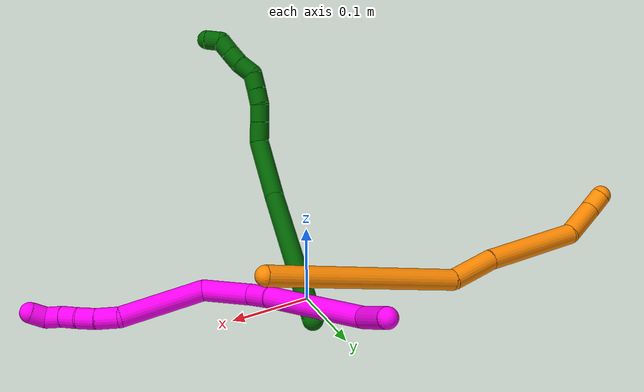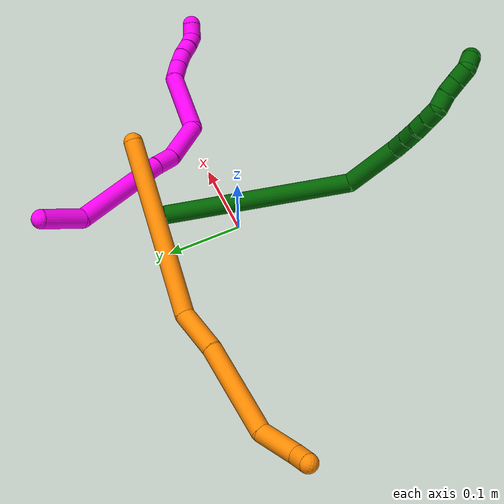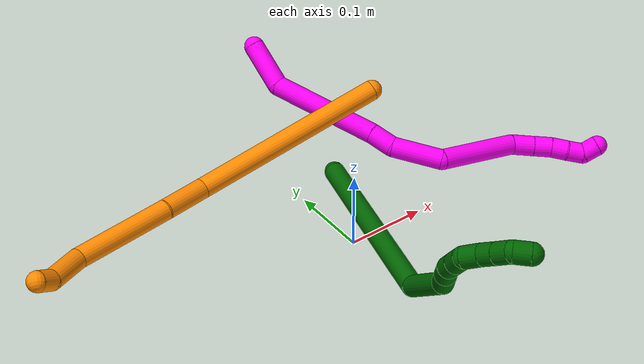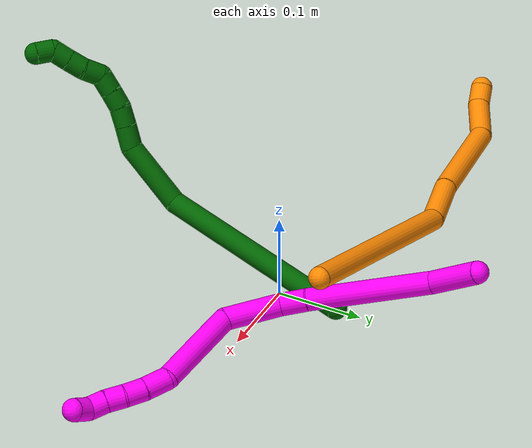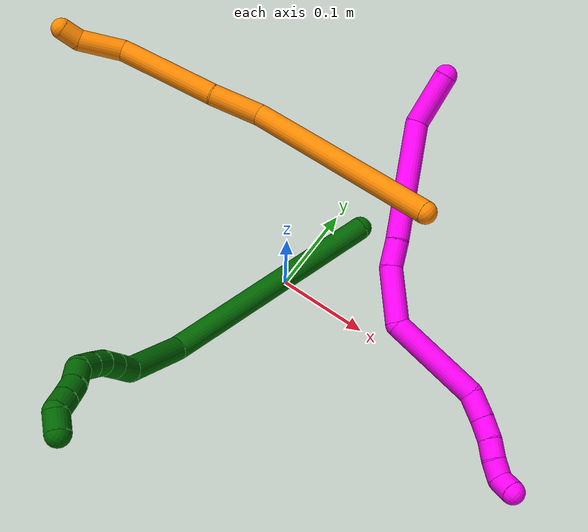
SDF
<sdf version="1.7">
 <world name="default">
  <model name="6">
   <static>0</static>
   <link name="6">
    <collision name="collision-cylinder-e_1_1_4">
     <pose>0.000333 -0.068164 0.103905 0.5806 0.002682 0.000801</pose>
     <geometry><cylinder><radius>0.0125</radius><length>0.248537</length></cylinder></geometry>
     <surface>
      <friction><ode><mu>1.16</mu><mu2>1.16</mu2><slip1>0</slip1><slip2>0</slip2></ode></friction>
      <contact><ode><kp>1e+06</kp><kd>1</kd><max_vel>0</max_vel><min_depth>0.001</min_depth></ode></contact>
     </surface>
    </collision>
    <visual name="visual-cylinder-e_1_1_4">
     <pose>0.000333 -0.068164 0.103905 0.5806 0.002682 0.000801</pose>
     <geometry><cylinder><radius>0.0125</radius><length>0.248537</length></cylinder></geometry>
     <material><ambient>0 0.392157 0.003922 1</ambient></material>
    </visual>
    <collision name="collision-cylinder-e_2_4_5">
     <pose>-0.012263 -0.170265 0.223527 1.13706 -0.332858 -0.21383</pose>
     <geometry><cylinder><radius>0.0125</radius><length>0.079142</length></cylinder></geometry>
     <surface>
      <friction><ode><mu>1.16</mu><mu2>1.16</mu2><slip1>0</slip1><slip2>0</slip2></ode></friction>
      <contact><ode><kp>1e+06</kp><kd>1</kd><max_vel>0</max_vel><min_depth>0.001</min_depth></ode></contact>
     </surface>
    </collision>
    <visual name="visual-cylinder-e_2_4_5">
     <pose>-0.012263 -0.170265 0.223527 1.13706 -0.332858 -0.21383</pose>
     <geometry><cylinder><radius>0.0125</radius><length>0.079142</length></cylinder></geometry>
     <material><ambient>0 0.392157 0.003922 1</ambient></material>
    </visual>
    <collision name="collision-cylinder-e_3_5_6">
     <pose>-0.027793 -0.216992 0.239311 1.5656 -0.200549 -0.199516</pose>
     <geometry><cylinder><radius>0.0125</radius><length>0.026107</length></cylinder></geometry>
     <surface>
      <friction><ode><mu>1.16</mu><mu2>1.16</mu2><slip1>0</slip1><slip2>0</slip2></ode></friction>
      <contact><ode><kp>1e+06</kp><kd>1</kd><max_vel>0</max_vel><min_depth>0.001</min_depth></ode></contact>
     </surface>
    </collision>
    <visual name="visual-cylinder-e_3_5_6">
     <pose>-0.027793 -0.216992 0.239311 1.5656 -0.200549 -0.199516</pose>
     <geometry><cylinder><radius>0.0125</radius><length>0.026107</length></cylinder></geometry>
     <material><ambient>0 0.392157 0.003922 1</ambient></material>
    </visual>
    <collision name="collision-cylinder-e_4_6_7">
     <pose>-0.032917 -0.240758 0.23956 1.55412 -0.226 -0.222293</pose>
     <geometry><cylinder><radius>0.0125</radius><length>0.022524</length></cylinder></geometry>
     <surface>
      <friction><ode><mu>1.16</mu><mu2>1.16</mu2><slip1>0</slip1><slip2>0</slip2></ode></friction>
      <contact><ode><kp>1e+06</kp><kd>1</kd><max_vel>0</max_vel><min_depth>0.001</min_depth></ode></contact>
     </surface>
    </collision>
    <visual name="visual-cylinder-e_4_6_7">
     <pose>-0.032917 -0.240758 0.23956 1.55412 -0.226 -0.222293</pose>
     <geometry><cylinder><radius>0.0125</radius><length>0.022524</length></cylinder></geometry>
     <material><ambient>0 0.392157 0.003922 1</ambient></material>
    </visual>
    <collision name="collision-cylinder-e_5_7_8">
     <pose>-0.03908 -0.260884 0.241703 1.35981 -0.370846 -0.301022</pose>
     <geometry><cylinder><radius>0.0125</radius><length>0.020084</length></cylinder></geometry>
     <surface>
      <friction><ode><mu>1.16</mu><mu2>1.16</mu2><slip1>0</slip1><slip2>0</slip2></ode></friction>
      <contact><ode><kp>1e+06</kp><kd>1</kd><max_vel>0</max_vel><min_depth>0.001</min_depth></ode></contact>
     </surface>
    </collision>
    <visual name="visual-cylinder-e_5_7_8">
     <pose>-0.03908 -0.260884 0.241703 1.35981 -0.370846 -0.301022</pose>
     <geometry><cylinder><radius>0.0125</radius><length>0.020084</length></cylinder></geometry>
     <material><ambient>0 0.392157 0.003922 1</ambient></material>
    </visual>
    <collision name="collision-cylinder-e_6_8_9">
     <pose>-0.046897 -0.279678 0.245842 1.34854 -0.399857 -0.321117</pose>
     <geometry><cylinder><radius>0.0125</radius><length>0.021464</length></cylinder></geometry>
     <surface>
      <friction><ode><mu>1.16</mu><mu2>1.16</mu2><slip1>0</slip1><slip2>0</slip2></ode></friction>
      <contact><ode><kp>1e+06</kp><kd>1</kd><max_vel>0</max_vel><min_depth>0.001</min_depth></ode></contact>
     </surface>
    </collision>
    <visual name="visual-cylinder-e_6_8_9">
     <pose>-0.046897 -0.279678 0.245842 1.34854 -0.399857 -0.321117</pose>
     <geometry><cylinder><radius>0.0125</radius><length>0.021464</length></cylinder></geometry>
     <material><ambient>0 0.392157 0.003922 1</ambient></material>
    </visual>
    <collision name="collision-cylinder-e_7_9_10">
     <pose>-0.059509 -0.294077 0.253052 0.757334 -0.883483 -0.371962</pose>
     <geometry><cylinder><radius>0.0125</radius><length>0.021824</length></cylinder></geometry>
     <surface>
      <friction><ode><mu>1.16</mu><mu2>1.16</mu2><slip1>0</slip1><slip2>0</slip2></ode></friction>
      <contact><ode><kp>1e+06</kp><kd>1</kd><max_vel>0</max_vel><min_depth>0.001</min_depth></ode></contact>
     </surface>
    </collision>
    <visual name="visual-cylinder-e_7_9_10">
     <pose>-0.059509 -0.294077 0.253052 0.757334 -0.883483 -0.371962</pose>
     <geometry><cylinder><radius>0.0125</radius><length>0.021824</length></cylinder></geometry>
     <material><ambient>0 0.392157 0.003922 1</ambient></material>
    </visual>
    <collision name="collision-cylinder-e_8_10_11">
     <pose>-0.074208 -0.304841 0.263064 0.878605 -0.676343 -0.327569</pose>
     <geometry><cylinder><radius>0.0125</radius><length>0.020015</length></cylinder></geometry>
     <surface>
      <friction><ode><mu>1.16</mu><mu2>1.16</mu2><slip1>0</slip1><slip2>0</slip2></ode></friction>
      <contact><ode><kp>1e+06</kp><kd>1</kd><max_vel>0</max_vel><min_depth>0.001</min_depth></ode></contact>
     </surface>
    </collision>
    <visual name="visual-cylinder-e_8_10_11">
     <pose>-0.074208 -0.304841 0.263064 0.878605 -0.676343 -0.327569</pose>
     <geometry><cylinder><radius>0.0125</radius><length>0.020015</length></cylinder></geometry>
     <material><ambient>0 0.392157 0.003922 1</ambient></material>
    </visual>
    <collision name="collision-cylinder-e_9_11_12">
     <pose>-0.086639 -0.31721 0.272947 0.914171 -0.654866 -0.331048</pose>
     <geometry><cylinder><radius>0.0125</radius><length>0.020251</length></cylinder></geometry>
     <surface>
      <friction><ode><mu>1.16</mu><mu2>1.16</mu2><slip1>0</slip1><slip2>0</slip2></ode></friction>
      <contact><ode><kp>1e+06</kp><kd>1</kd><max_vel>0</max_vel><min_depth>0.001</min_depth></ode></contact>
     </surface>
    </collision>
    <visual name="visual-cylinder-e_9_11_12">
     <pose>-0.086639 -0.31721 0.272947 0.914171 -0.654866 -0.331048</pose>
     <geometry><cylinder><radius>0.0125</radius><length>0.020251</length></cylinder></geometry>
     <material><ambient>0 0.392157 0.003922 1</ambient></material>
    </visual>
    <collision name="collision-cylinder-e_10_12_2">
     <pose>-0.100695 -0.322946 0.284006 -0.101275 -0.905706 0.049311</pose>
     <geometry><cylinder><radius>0.0125</radius><length>0.020052</length></cylinder></geometry>
     <surface>
      <friction><ode><mu>1.16</mu><mu2>1.16</mu2><slip1>0</slip1><slip2>0</slip2></ode></friction>
      <contact><ode><kp>1e+06</kp><kd>1</kd><max_vel>0</max_vel><min_depth>0.001</min_depth></ode></contact>
     </surface>
    </collision>
    <visual name="visual-cylinder-e_10_12_2">
     <pose>-0.100695 -0.322946 0.284006 -0.101275 -0.905706 0.049311</pose>
     <geometry><cylinder><radius>0.0125</radius><length>0.020052</length></cylinder></geometry>
     <material><ambient>0 0.392157 0.003922 1</ambient></material>
    </visual>
    <collision name="collision-sphere-2">
     <pose>-0.108584 -0.32232 0.290161 0 -0 0</pose>
     <geometry><sphere><radius>0.0125</radius></sphere></geometry>
     <surface>
      <friction><ode><mu>1.16</mu><mu2>1.16</mu2><slip1>0</slip1><slip2>0</slip2></ode></friction>
      <contact><ode><kp>1e+06</kp><kd>1</kd><max_vel>0</max_vel><min_depth>0.001</min_depth></ode></contact>
     </surface>
    </collision>
    <visual name="visual-sphere-2">
     <pose>-0.108584 -0.32232 0.290161 0 -0 0</pose>
     <geometry><sphere><radius>0.0125</radius></sphere></geometry>
     <material><ambient>0 0.392157 0.003922 1</ambient></material>
    </visual>
    <collision name="collision-sphere-12">
     <pose>-0.092806 -0.323571 0.27785 0 -0 0</pose>
     <geometry><sphere><radius>0.0125</radius></sphere></geometry>
     <surface>
      <friction><ode><mu>1.16</mu><mu2>1.16</mu2><slip1>0</slip1><slip2>0</slip2></ode></friction>
      <contact><ode><kp>1e+06</kp><kd>1</kd><max_vel>0</max_vel><min_depth>0.001</min_depth></ode></contact>
     </surface>
    </collision>
    <visual name="visual-sphere-12">
     <pose>-0.092806 -0.323571 0.27785 0 -0 0</pose>
     <geometry><sphere><radius>0.0125</radius></sphere></geometry>
     <material><ambient>0 0.392157 0.003922 1</ambient></material>
    </visual>
    <collision name="collision-sphere-11">
     <pose>-0.080472 -0.310849 0.268045 0 -0 0</pose>
     <geometry><sphere><radius>0.0125</radius></sphere></geometry>
     <surface>
      <friction><ode><mu>1.16</mu><mu2>1.16</mu2><slip1>0</slip1><slip2>0</slip2></ode></friction>
      <contact><ode><kp>1e+06</kp><kd>1</kd><max_vel>0</max_vel><min_depth>0.001</min_depth></ode></contact>
     </surface>
    </collision>
    <visual name="visual-sphere-11">
     <pose>-0.080472 -0.310849 0.268045 0 -0 0</pose>
     <geometry><sphere><radius>0.0125</radius></sphere></geometry>
     <material><ambient>0 0.392157 0.003922 1</ambient></material>
    </visual>
    <collision name="collision-sphere-10">
     <pose>-0.067944 -0.298833 0.258083 0 -0 0</pose>
     <geometry><sphere><radius>0.0125</radius></sphere></geometry>
     <surface>
      <friction><ode><mu>1.16</mu><mu2>1.16</mu2><slip1>0</slip1><slip2>0</slip2></ode></friction>
      <contact><ode><kp>1e+06</kp><kd>1</kd><max_vel>0</max_vel><min_depth>0.001</min_depth></ode></contact>
     </surface>
    </collision>
    <visual name="visual-sphere-10">
     <pose>-0.067944 -0.298833 0.258083 0 -0 0</pose>
     <geometry><sphere><radius>0.0125</radius></sphere></geometry>
     <material><ambient>0 0.392157 0.003922 1</ambient></material>
    </visual>
    <collision name="collision-sphere-9">
     <pose>-0.051075 -0.289321 0.248021 0 -0 0</pose>
     <geometry><sphere><radius>0.0125</radius></sphere></geometry>
     <surface>
      <friction><ode><mu>1.16</mu><mu2>1.16</mu2><slip1>0</slip1><slip2>0</slip2></ode></friction>
      <contact><ode><kp>1e+06</kp><kd>1</kd><max_vel>0</max_vel><min_depth>0.001</min_depth></ode></contact>
     </surface>
    </collision>
    <visual name="visual-sphere-9">
     <pose>-0.051075 -0.289321 0.248021 0 -0 0</pose>
     <geometry><sphere><radius>0.0125</radius></sphere></geometry>
     <material><ambient>0 0.392157 0.003922 1</ambient></material>
    </visual>
    <collision name="collision-sphere-4">
     <pose>0.000666 -0.136329 0.207809 0 -0 0</pose>
     <geometry><sphere><radius>0.0125</radius></sphere></geometry>
     <surface>
      <friction><ode><mu>1.16</mu><mu2>1.16</mu2><slip1>0</slip1><slip2>0</slip2></ode></friction>
      <contact><ode><kp>1e+06</kp><kd>1</kd><max_vel>0</max_vel><min_depth>0.001</min_depth></ode></contact>
     </surface>
    </collision>
    <visual name="visual-sphere-4">
     <pose>0.000666 -0.136329 0.207809 0 -0 0</pose>
     <geometry><sphere><radius>0.0125</radius></sphere></geometry>
     <material><ambient>0 0.392157 0.003922 1</ambient></material>
    </visual>
    <collision name="collision-sphere-1">
     <geometry><sphere><radius>0.0125</radius></sphere></geometry>
     <surface>
      <friction><ode><mu>1.16</mu><mu2>1.16</mu2><slip1>0</slip1><slip2>0</slip2></ode></friction>
      <contact><ode><kp>1e+06</kp><kd>1</kd><max_vel>0</max_vel><min_depth>0.001</min_depth></ode></contact>
     </surface>
    </collision>
    <visual name="visual-sphere-1">
     <geometry><sphere><radius>0.0125</radius></sphere></geometry>
     <material><ambient>0 0.392157 0.003922 1</ambient></material>
    </visual>
    <collision name="collision-sphere-8">
     <pose>-0.042719 -0.270036 0.243663 0 -0 0</pose>
     <geometry><sphere><radius>0.0125</radius></sphere></geometry>
     <surface>
      <friction><ode><mu>1.16</mu><mu2>1.16</mu2><slip1>0</slip1><slip2>0</slip2></ode></friction>
      <contact><ode><kp>1e+06</kp><kd>1</kd><max_vel>0</max_vel><min_depth>0.001</min_depth></ode></contact>
     </surface>
    </collision>
    <visual name="visual-sphere-8">
     <pose>-0.042719 -0.270036 0.243663 0 -0 0</pose>
     <geometry><sphere><radius>0.0125</radius></sphere></geometry>
     <material><ambient>0 0.392157 0.003922 1</ambient></material>
    </visual>
    <collision name="collision-sphere-5">
     <pose>-0.025193 -0.204201 0.239244 0 -0 0</pose>
     <geometry><sphere><radius>0.0125</radius></sphere></geometry>
     <surface>
      <friction><ode><mu>1.16</mu><mu2>1.16</mu2><slip1>0</slip1><slip2>0</slip2></ode></friction>
      <contact><ode><kp>1e+06</kp><kd>1</kd><max_vel>0</max_vel><min_depth>0.001</min_depth></ode></contact>
     </surface>
    </collision>
    <visual name="visual-sphere-5">
     <pose>-0.025193 -0.204201 0.239244 0 -0 0</pose>
     <geometry><sphere><radius>0.0125</radius></sphere></geometry>
     <material><ambient>0 0.392157 0.003922 1</ambient></material>
    </visual>
    <collision name="collision-sphere-6">
     <pose>-0.030394 -0.229784 0.239377 0 -0 0</pose>
     <geometry><sphere><radius>0.0125</radius></sphere></geometry>
     <surface>
      <friction><ode><mu>1.16</mu><mu2>1.16</mu2><slip1>0</slip1><slip2>0</slip2></ode></friction>
      <contact><ode><kp>1e+06</kp><kd>1</kd><max_vel>0</max_vel><min_depth>0.001</min_depth></ode></contact>
     </surface>
    </collision>
    <visual name="visual-sphere-6">
     <pose>-0.030394 -0.229784 0.239377 0 -0 0</pose>
     <geometry><sphere><radius>0.0125</radius></sphere></geometry>
     <material><ambient>0 0.392157 0.003922 1</ambient></material>
    </visual>
    <collision name="collision-sphere-7">
     <pose>-0.035441 -0.251732 0.239743 0 -0 0</pose>
     <geometry><sphere><radius>0.0125</radius></sphere></geometry>
     <surface>
      <friction><ode><mu>1.16</mu><mu2>1.16</mu2><slip1>0</slip1><slip2>0</slip2></ode></friction>
      <contact><ode><kp>1e+06</kp><kd>1</kd><max_vel>0</max_vel><min_depth>0.001</min_depth></ode></contact>
     </surface>
    </collision>
    <visual name="visual-sphere-7">
     <pose>-0.035441 -0.251732 0.239743 0 -0 0</pose>
     <geometry><sphere><radius>0.0125</radius></sphere></geometry>
     <material><ambient>0 0.392157 0.003922 1</ambient></material>
    </visual>
    <inertial>
     <pose>-0.021408 -0.156331 0.174599 0 -0 0</pose>
     <mass>0.5</mass>
     <inertia>
      <ixx>0.001322</ixx>
      <ixy>0</ixy>
      <ixz>0</ixz>
      <iyy>0.001069</iyy>
      <iyz>0</iyz>
      <izz>0.000795</izz>
     </inertia>
    </inertial>
   </link>
   <pose>0.037782 0.088373 0.034726 -2.05185 0.385309 2.89774</pose>
  </model>
  <model name="10">
   <static>0</static>
   <link name="10">
    <collision name="collision-cylinder-e_1_1_4">
     <pose>-0.002709 -0.006035 0.028867 0.206107 -0.091599 -0.00948</pose>
     <geometry><cylinder><radius>0.0125</radius><length>0.059231</length></cylinder></geometry>
     <surface>
      <friction><ode><mu>1.16</mu><mu2>1.16</mu2><slip1>0</slip1><slip2>0</slip2></ode></friction>
      <contact><ode><kp>1e+06</kp><kd>1</kd><max_vel>0</max_vel><min_depth>0.001</min_depth></ode></contact>
     </surface>
    </collision>
    <visual name="visual-cylinder-e_1_1_4">
     <pose>-0.002709 -0.006035 0.028867 0.206107 -0.091599 -0.00948</pose>
     <geometry><cylinder><radius>0.0125</radius><length>0.059231</length></cylinder></geometry>
     <material><ambient>1 0 0.964706 1</ambient></material>
    </visual>
    <collision name="collision-cylinder-e_2_4_5">
     <pose>0.016136 -0.0452 0.112611 0.543141 0.324365 0.091057</pose>
     <geometry><cylinder><radius>0.0125</radius><length>0.135256</length></cylinder></geometry>
     <surface>
      <friction><ode><mu>1.16</mu><mu2>1.16</mu2><slip1>0</slip1><slip2>0</slip2></ode></friction>
      <contact><ode><kp>1e+06</kp><kd>1</kd><max_vel>0</max_vel><min_depth>0.001</min_depth></ode></contact>
     </surface>
    </collision>
    <visual name="visual-cylinder-e_2_4_5">
     <pose>0.016136 -0.0452 0.112611 0.543141 0.324365 0.091057</pose>
     <geometry><cylinder><radius>0.0125</radius><length>0.135256</length></cylinder></geometry>
     <material><ambient>1 0 0.964706 1</ambient></material>
    </visual>
    <collision name="collision-cylinder-e_3_5_6">
     <pose>0.040949 -0.085212 0.180232 0.495155 0.221366 0.056168</pose>
     <geometry><cylinder><radius>0.0125</radius><length>0.029691</length></cylinder></geometry>
     <surface>
      <friction><ode><mu>1.16</mu><mu2>1.16</mu2><slip1>0</slip1><slip2>0</slip2></ode></friction>
      <contact><ode><kp>1e+06</kp><kd>1</kd><max_vel>0</max_vel><min_depth>0.001</min_depth></ode></contact>
     </surface>
    </collision>
    <visual name="visual-cylinder-e_3_5_6">
     <pose>0.040949 -0.085212 0.180232 0.495155 0.221366 0.056168</pose>
     <geometry><cylinder><radius>0.0125</radius><length>0.029691</length></cylinder></geometry>
     <material><ambient>1 0 0.964706 1</ambient></material>
    </visual>
    <collision name="collision-cylinder-e_4_6_7">
     <pose>0.056043 -0.113278 0.212623 0.823031 0.388761 0.171417</pose>
     <geometry><cylinder><radius>0.0125</radius><length>0.062444</length></cylinder></geometry>
     <surface>
      <friction><ode><mu>1.16</mu><mu2>1.16</mu2><slip1>0</slip1><slip2>0</slip2></ode></friction>
      <contact><ode><kp>1e+06</kp><kd>1</kd><max_vel>0</max_vel><min_depth>0.001</min_depth></ode></contact>
     </surface>
    </collision>
    <visual name="visual-cylinder-e_4_6_7">
     <pose>0.056043 -0.113278 0.212623 0.823031 0.388761 0.171417</pose>
     <geometry><cylinder><radius>0.0125</radius><length>0.062444</length></cylinder></geometry>
     <material><ambient>1 0 0.964706 1</ambient></material>
    </visual>
    <collision name="collision-cylinder-e_5_7_8">
     <pose>0.079617 -0.184228 0.232507 1.56603 0.231666 0.230574</pose>
     <geometry><cylinder><radius>0.0125</radius><length>0.102266</length></cylinder></geometry>
     <surface>
      <friction><ode><mu>1.16</mu><mu2>1.16</mu2><slip1>0</slip1><slip2>0</slip2></ode></friction>
      <contact><ode><kp>1e+06</kp><kd>1</kd><max_vel>0</max_vel><min_depth>0.001</min_depth></ode></contact>
     </surface>
    </collision>
    <visual name="visual-cylinder-e_5_7_8">
     <pose>0.079617 -0.184228 0.232507 1.56603 0.231666 0.230574</pose>
     <geometry><cylinder><radius>0.0125</radius><length>0.102266</length></cylinder></geometry>
     <material><ambient>1 0 0.964706 1</ambient></material>
    </visual>
    <collision name="collision-cylinder-e_6_8_9">
     <pose>0.096293 -0.245933 0.238344 1.13217 0.358147 0.229045</pose>
     <geometry><cylinder><radius>0.0125</radius><length>0.028161</length></cylinder></geometry>
     <surface>
      <friction><ode><mu>1.16</mu><mu2>1.16</mu2><slip1>0</slip1><slip2>0</slip2></ode></friction>
      <contact><ode><kp>1e+06</kp><kd>1</kd><max_vel>0</max_vel><min_depth>0.001</min_depth></ode></contact>
     </surface>
    </collision>
    <visual name="visual-cylinder-e_6_8_9">
     <pose>0.096293 -0.245933 0.238344 1.13217 0.358147 0.229045</pose>
     <geometry><cylinder><radius>0.0125</radius><length>0.028161</length></cylinder></geometry>
     <material><ambient>1 0 0.964706 1</ambient></material>
    </visual>
    <collision name="collision-cylinder-e_7_9_10">
     <pose>0.106124 -0.266663 0.248988 1.04999 0.44994 0.263564</pose>
     <geometry><cylinder><radius>0.0125</radius><length>0.022509</length></cylinder></geometry>
     <surface>
      <friction><ode><mu>1.16</mu><mu2>1.16</mu2><slip1>0</slip1><slip2>0</slip2></ode></friction>
      <contact><ode><kp>1e+06</kp><kd>1</kd><max_vel>0</max_vel><min_depth>0.001</min_depth></ode></contact>
     </surface>
    </collision>
    <visual name="visual-cylinder-e_7_9_10">
     <pose>0.106124 -0.266663 0.248988 1.04999 0.44994 0.263564</pose>
     <geometry><cylinder><radius>0.0125</radius><length>0.022509</length></cylinder></geometry>
     <material><ambient>1 0 0.964706 1</ambient></material>
    </visual>
    <collision name="collision-cylinder-e_8_10_11">
     <pose>0.114962 -0.282606 0.259905 0.883182 0.402827 0.192448</pose>
     <geometry><cylinder><radius>0.0125</radius><length>0.020122</length></cylinder></geometry>
     <surface>
      <friction><ode><mu>1.16</mu><mu2>1.16</mu2><slip1>0</slip1><slip2>0</slip2></ode></friction>
      <contact><ode><kp>1e+06</kp><kd>1</kd><max_vel>0</max_vel><min_depth>0.001</min_depth></ode></contact>
     </surface>
    </collision>
    <visual name="visual-cylinder-e_8_10_11">
     <pose>0.114962 -0.282606 0.259905 0.883182 0.402827 0.192448</pose>
     <geometry><cylinder><radius>0.0125</radius><length>0.020122</length></cylinder></geometry>
     <material><ambient>1 0 0.964706 1</ambient></material>
    </visual>
    <collision name="collision-cylinder-e_9_11_12">
     <pose>0.122086 -0.297912 0.27082 1.01714 0.320303 0.179622</pose>
     <geometry><cylinder><radius>0.0125</radius><length>0.0202</length></cylinder></geometry>
     <surface>
      <friction><ode><mu>1.16</mu><mu2>1.16</mu2><slip1>0</slip1><slip2>0</slip2></ode></friction>
      <contact><ode><kp>1e+06</kp><kd>1</kd><max_vel>0</max_vel><min_depth>0.001</min_depth></ode></contact>
     </surface>
    </collision>
    <visual name="visual-cylinder-e_9_11_12">
     <pose>0.122086 -0.297912 0.27082 1.01714 0.320303 0.179622</pose>
     <geometry><cylinder><radius>0.0125</radius><length>0.0202</length></cylinder></geometry>
     <material><ambient>1 0 0.964706 1</ambient></material>
    </visual>
    <collision name="collision-cylinder-e_10_12_2">
     <pose>0.132873 -0.31265 0.275798 1.58018 0.857317 0.864433</pose>
     <geometry><cylinder><radius>0.0125</radius><length>0.020119</length></cylinder></geometry>
     <surface>
      <friction><ode><mu>1.16</mu><mu2>1.16</mu2><slip1>0</slip1><slip2>0</slip2></ode></friction>
      <contact><ode><kp>1e+06</kp><kd>1</kd><max_vel>0</max_vel><min_depth>0.001</min_depth></ode></contact>
     </surface>
    </collision>
    <visual name="visual-cylinder-e_10_12_2">
     <pose>0.132873 -0.31265 0.275798 1.58018 0.857317 0.864433</pose>
     <geometry><cylinder><radius>0.0125</radius><length>0.020119</length></cylinder></geometry>
     <material><ambient>1 0 0.964706 1</ambient></material>
    </visual>
    <collision name="collision-sphere-2">
     <pose>0.140479 -0.319234 0.275737 0 -0 0</pose>
     <geometry><sphere><radius>0.0125</radius></sphere></geometry>
     <surface>
      <friction><ode><mu>1.16</mu><mu2>1.16</mu2><slip1>0</slip1><slip2>0</slip2></ode></friction>
      <contact><ode><kp>1e+06</kp><kd>1</kd><max_vel>0</max_vel><min_depth>0.001</min_depth></ode></contact>
     </surface>
    </collision>
    <visual name="visual-sphere-2">
     <pose>0.140479 -0.319234 0.275737 0 -0 0</pose>
     <geometry><sphere><radius>0.0125</radius></sphere></geometry>
     <material><ambient>1 0 0.964706 1</ambient></material>
    </visual>
    <collision name="collision-sphere-12">
     <pose>0.125267 -0.306067 0.27586 0 -0 0</pose>
     <geometry><sphere><radius>0.0125</radius></sphere></geometry>
     <surface>
      <friction><ode><mu>1.16</mu><mu2>1.16</mu2><slip1>0</slip1><slip2>0</slip2></ode></friction>
      <contact><ode><kp>1e+06</kp><kd>1</kd><max_vel>0</max_vel><min_depth>0.001</min_depth></ode></contact>
     </surface>
    </collision>
    <visual name="visual-sphere-12">
     <pose>0.125267 -0.306067 0.27586 0 -0 0</pose>
     <geometry><sphere><radius>0.0125</radius></sphere></geometry>
     <material><ambient>1 0 0.964706 1</ambient></material>
    </visual>
    <collision name="collision-sphere-11">
     <pose>0.118906 -0.289758 0.265779 0 -0 0</pose>
     <geometry><sphere><radius>0.0125</radius></sphere></geometry>
     <surface>
      <friction><ode><mu>1.16</mu><mu2>1.16</mu2><slip1>0</slip1><slip2>0</slip2></ode></friction>
      <contact><ode><kp>1e+06</kp><kd>1</kd><max_vel>0</max_vel><min_depth>0.001</min_depth></ode></contact>
     </surface>
    </collision>
    <visual name="visual-sphere-11">
     <pose>0.118906 -0.289758 0.265779 0 -0 0</pose>
     <geometry><sphere><radius>0.0125</radius></sphere></geometry>
     <material><ambient>1 0 0.964706 1</ambient></material>
    </visual>
    <collision name="collision-sphere-10">
     <pose>0.111018 -0.275454 0.25403 0 -0 0</pose>
     <geometry><sphere><radius>0.0125</radius></sphere></geometry>
     <surface>
      <friction><ode><mu>1.16</mu><mu2>1.16</mu2><slip1>0</slip1><slip2>0</slip2></ode></friction>
      <contact><ode><kp>1e+06</kp><kd>1</kd><max_vel>0</max_vel><min_depth>0.001</min_depth></ode></contact>
     </surface>
    </collision>
    <visual name="visual-sphere-10">
     <pose>0.111018 -0.275454 0.25403 0 -0 0</pose>
     <geometry><sphere><radius>0.0125</radius></sphere></geometry>
     <material><ambient>1 0 0.964706 1</ambient></material>
    </visual>
    <collision name="collision-sphere-9">
     <pose>0.101229 -0.257872 0.243945 0 -0 0</pose>
     <geometry><sphere><radius>0.0125</radius></sphere></geometry>
     <surface>
      <friction><ode><mu>1.16</mu><mu2>1.16</mu2><slip1>0</slip1><slip2>0</slip2></ode></friction>
      <contact><ode><kp>1e+06</kp><kd>1</kd><max_vel>0</max_vel><min_depth>0.001</min_depth></ode></contact>
     </surface>
    </collision>
    <visual name="visual-sphere-9">
     <pose>0.101229 -0.257872 0.243945 0 -0 0</pose>
     <geometry><sphere><radius>0.0125</radius></sphere></geometry>
     <material><ambient>1 0 0.964706 1</ambient></material>
    </visual>
    <collision name="collision-sphere-4">
     <pose>-0.005418 -0.012071 0.057735 0 -0 0</pose>
     <geometry><sphere><radius>0.0125</radius></sphere></geometry>
     <surface>
      <friction><ode><mu>1.16</mu><mu2>1.16</mu2><slip1>0</slip1><slip2>0</slip2></ode></friction>
      <contact><ode><kp>1e+06</kp><kd>1</kd><max_vel>0</max_vel><min_depth>0.001</min_depth></ode></contact>
     </surface>
    </collision>
    <visual name="visual-sphere-4">
     <pose>-0.005418 -0.012071 0.057735 0 -0 0</pose>
     <geometry><sphere><radius>0.0125</radius></sphere></geometry>
     <material><ambient>1 0 0.964706 1</ambient></material>
    </visual>
    <collision name="collision-sphere-1">
     <geometry><sphere><radius>0.0125</radius></sphere></geometry>
     <surface>
      <friction><ode><mu>1.16</mu><mu2>1.16</mu2><slip1>0</slip1><slip2>0</slip2></ode></friction>
      <contact><ode><kp>1e+06</kp><kd>1</kd><max_vel>0</max_vel><min_depth>0.001</min_depth></ode></contact>
     </surface>
    </collision>
    <visual name="visual-sphere-1">
     <geometry><sphere><radius>0.0125</radius></sphere></geometry>
     <material><ambient>1 0 0.964706 1</ambient></material>
    </visual>
    <collision name="collision-sphere-8">
     <pose>0.091357 -0.233994 0.232744 0 -0 0</pose>
     <geometry><sphere><radius>0.0125</radius></sphere></geometry>
     <surface>
      <friction><ode><mu>1.16</mu><mu2>1.16</mu2><slip1>0</slip1><slip2>0</slip2></ode></friction>
      <contact><ode><kp>1e+06</kp><kd>1</kd><max_vel>0</max_vel><min_depth>0.001</min_depth></ode></contact>
     </surface>
    </collision>
    <visual name="visual-sphere-8">
     <pose>0.091357 -0.233994 0.232744 0 -0 0</pose>
     <geometry><sphere><radius>0.0125</radius></sphere></geometry>
     <material><ambient>1 0 0.964706 1</ambient></material>
    </visual>
    <collision name="collision-sphere-5">
     <pose>0.037689 -0.07833 0.167488 0 -0 0</pose>
     <geometry><sphere><radius>0.0125</radius></sphere></geometry>
     <surface>
      <friction><ode><mu>1.16</mu><mu2>1.16</mu2><slip1>0</slip1><slip2>0</slip2></ode></friction>
      <contact><ode><kp>1e+06</kp><kd>1</kd><max_vel>0</max_vel><min_depth>0.001</min_depth></ode></contact>
     </surface>
    </collision>
    <visual name="visual-sphere-5">
     <pose>0.037689 -0.07833 0.167488 0 -0 0</pose>
     <geometry><sphere><radius>0.0125</radius></sphere></geometry>
     <material><ambient>1 0 0.964706 1</ambient></material>
    </visual>
    <collision name="collision-sphere-6">
     <pose>0.044208 -0.092094 0.192976 0 -0 0</pose>
     <geometry><sphere><radius>0.0125</radius></sphere></geometry>
     <surface>
      <friction><ode><mu>1.16</mu><mu2>1.16</mu2><slip1>0</slip1><slip2>0</slip2></ode></friction>
      <contact><ode><kp>1e+06</kp><kd>1</kd><max_vel>0</max_vel><min_depth>0.001</min_depth></ode></contact>
     </surface>
    </collision>
    <visual name="visual-sphere-6">
     <pose>0.044208 -0.092094 0.192976 0 -0 0</pose>
     <geometry><sphere><radius>0.0125</radius></sphere></geometry>
     <material><ambient>1 0 0.964706 1</ambient></material>
    </visual>
    <collision name="collision-sphere-7">
     <pose>0.067877 -0.134462 0.232269 0 -0 0</pose>
     <geometry><sphere><radius>0.0125</radius></sphere></geometry>
     <surface>
      <friction><ode><mu>1.16</mu><mu2>1.16</mu2><slip1>0</slip1><slip2>0</slip2></ode></friction>
      <contact><ode><kp>1e+06</kp><kd>1</kd><max_vel>0</max_vel><min_depth>0.001</min_depth></ode></contact>
     </surface>
    </collision>
    <visual name="visual-sphere-7">
     <pose>0.067877 -0.134462 0.232269 0 -0 0</pose>
     <geometry><sphere><radius>0.0125</radius></sphere></geometry>
     <material><ambient>1 0 0.964706 1</ambient></material>
    </visual>
    <inertial>
     <pose>0.054865 -0.131675 0.175825 0 -0 0</pose>
     <mass>0.5</mass>
     <inertia>
      <ixx>0.000395</ixx>
      <ixy>0</ixy>
      <ixz>0</ixz>
      <iyy>0.000252</iyy>
      <iyz>0</iyz>
      <izz>0.000144</izz>
     </inertia>
    </inertial>
   </link>
   <pose>0.032982 0.249668 0.133869 2.39496 -1.03593 -0.940771</pose>
  </model>
  <model name="19">
   <static>0</static>
   <link name="19">
    <collision name="collision-cylinder-e_1_1_4">
     <pose>-0.109692 0.017943 0.04535 -0.376745 -1.15243 0.24648</pose>
     <geometry><cylinder><radius>0.0125</radius><length>0.240091</length></cylinder></geometry>
     <surface>
      <friction><ode><mu>1.16</mu><mu2>1.16</mu2><slip1>0</slip1><slip2>0</slip2></ode></friction>
      <contact><ode><kp>1e+06</kp><kd>1</kd><max_vel>0</max_vel><min_depth>0.001</min_depth></ode></contact>
     </surface>
    </collision>
    <visual name="visual-cylinder-e_1_1_4">
     <pose>-0.109692 0.017943 0.04535 -0.376745 -1.15243 0.24648</pose>
     <geometry><cylinder><radius>0.0125</radius><length>0.240091</length></cylinder></geometry>
     <material><ambient>0.996078 0.537255 0 1</ambient></material>
    </visual>
    <collision name="collision-cylinder-e_2_4_5">
     <pose>-0.240521 0.051508 0.105164 -0.823931 -0.781822 0.356349</pose>
     <geometry><cylinder><radius>0.0125</radius><length>0.060002</length></cylinder></geometry>
     <surface>
      <friction><ode><mu>1.16</mu><mu2>1.16</mu2><slip1>0</slip1><slip2>0</slip2></ode></friction>
      <contact><ode><kp>1e+06</kp><kd>1</kd><max_vel>0</max_vel><min_depth>0.001</min_depth></ode></contact>
     </surface>
    </collision>
    <visual name="visual-cylinder-e_2_4_5">
     <pose>-0.240521 0.051508 0.105164 -0.823931 -0.781822 0.356349</pose>
     <geometry><cylinder><radius>0.0125</radius><length>0.060002</length></cylinder></geometry>
     <material><ambient>0.996078 0.537255 0 1</ambient></material>
    </visual>
    <collision name="collision-cylinder-e_3_5_6">
     <pose>-0.310784 0.092324 0.147014 -0.743683 -0.922515 0.382907</pose>
     <geometry><cylinder><radius>0.0125</radius><length>0.123257</length></cylinder></geometry>
     <surface>
      <friction><ode><mu>1.16</mu><mu2>1.16</mu2><slip1>0</slip1><slip2>0</slip2></ode></friction>
      <contact><ode><kp>1e+06</kp><kd>1</kd><max_vel>0</max_vel><min_depth>0.001</min_depth></ode></contact>
     </surface>
    </collision>
    <visual name="visual-cylinder-e_3_5_6">
     <pose>-0.310784 0.092324 0.147014 -0.743683 -0.922515 0.382907</pose>
     <geometry><cylinder><radius>0.0125</radius><length>0.123257</length></cylinder></geometry>
     <material><ambient>0.996078 0.537255 0 1</ambient></material>
    </visual>
    <collision name="collision-cylinder-e_4_6_7">
     <pose>-0.37214 0.134821 0.19019 -0.831191 -0.481172 0.215695</pose>
     <geometry><cylinder><radius>0.0125</radius><length>0.05285</length></cylinder></geometry>
     <surface>
      <friction><ode><mu>1.16</mu><mu2>1.16</mu2><slip1>0</slip1><slip2>0</slip2></ode></friction>
      <contact><ode><kp>1e+06</kp><kd>1</kd><max_vel>0</max_vel><min_depth>0.001</min_depth></ode></contact>
     </surface>
    </collision>
    <visual name="visual-cylinder-e_4_6_7">
     <pose>-0.37214 0.134821 0.19019 -0.831191 -0.481172 0.215695</pose>
     <geometry><cylinder><radius>0.0125</radius><length>0.05285</length></cylinder></geometry>
     <material><ambient>0.996078 0.537255 0 1</ambient></material>
    </visual>
    <collision name="collision-cylinder-e_5_7_2">
     <pose>-0.389849 0.162288 0.208863 -1.2942 -0.478474 0.364523</pose>
     <geometry><cylinder><radius>0.0125</radius><length>0.023801</length></cylinder></geometry>
     <surface>
      <friction><ode><mu>1.16</mu><mu2>1.16</mu2><slip1>0</slip1><slip2>0</slip2></ode></friction>
      <contact><ode><kp>1e+06</kp><kd>1</kd><max_vel>0</max_vel><min_depth>0.001</min_depth></ode></contact>
     </surface>
    </collision>
    <visual name="visual-cylinder-e_5_7_2">
     <pose>-0.389849 0.162288 0.208863 -1.2942 -0.478474 0.364523</pose>
     <geometry><cylinder><radius>0.0125</radius><length>0.023801</length></cylinder></geometry>
     <material><ambient>0.996078 0.537255 0 1</ambient></material>
    </visual>
    <collision name="collision-sphere-2">
     <pose>-0.395328 0.17245 0.211747 0 -0 0</pose>
     <geometry><sphere><radius>0.0125</radius></sphere></geometry>
     <surface>
      <friction><ode><mu>1.16</mu><mu2>1.16</mu2><slip1>0</slip1><slip2>0</slip2></ode></friction>
      <contact><ode><kp>1e+06</kp><kd>1</kd><max_vel>0</max_vel><min_depth>0.001</min_depth></ode></contact>
     </surface>
    </collision>
    <visual name="visual-sphere-2">
     <pose>-0.395328 0.17245 0.211747 0 -0 0</pose>
     <geometry><sphere><radius>0.0125</radius></sphere></geometry>
     <material><ambient>0.996078 0.537255 0 1</ambient></material>
    </visual>
    <collision name="collision-sphere-7">
     <pose>-0.38437 0.152125 0.205978 0 -0 0</pose>
     <geometry><sphere><radius>0.0125</radius></sphere></geometry>
     <surface>
      <friction><ode><mu>1.16</mu><mu2>1.16</mu2><slip1>0</slip1><slip2>0</slip2></ode></friction>
      <contact><ode><kp>1e+06</kp><kd>1</kd><max_vel>0</max_vel><min_depth>0.001</min_depth></ode></contact>
     </surface>
    </collision>
    <visual name="visual-sphere-7">
     <pose>-0.38437 0.152125 0.205978 0 -0 0</pose>
     <geometry><sphere><radius>0.0125</radius></sphere></geometry>
     <material><ambient>0.996078 0.537255 0 1</ambient></material>
    </visual>
    <collision name="collision-sphere-6">
     <pose>-0.35991 0.117516 0.174402 0 -0 0</pose>
     <geometry><sphere><radius>0.0125</radius></sphere></geometry>
     <surface>
      <friction><ode><mu>1.16</mu><mu2>1.16</mu2><slip1>0</slip1><slip2>0</slip2></ode></friction>
      <contact><ode><kp>1e+06</kp><kd>1</kd><max_vel>0</max_vel><min_depth>0.001</min_depth></ode></contact>
     </surface>
    </collision>
    <visual name="visual-sphere-6">
     <pose>-0.35991 0.117516 0.174402 0 -0 0</pose>
     <geometry><sphere><radius>0.0125</radius></sphere></geometry>
     <material><ambient>0.996078 0.537255 0 1</ambient></material>
    </visual>
    <collision name="collision-sphere-5">
     <pose>-0.261659 0.067131 0.119627 0 -0 0</pose>
     <geometry><sphere><radius>0.0125</radius></sphere></geometry>
     <surface>
      <friction><ode><mu>1.16</mu><mu2>1.16</mu2><slip1>0</slip1><slip2>0</slip2></ode></friction>
      <contact><ode><kp>1e+06</kp><kd>1</kd><max_vel>0</max_vel><min_depth>0.001</min_depth></ode></contact>
     </surface>
    </collision>
    <visual name="visual-sphere-5">
     <pose>-0.261659 0.067131 0.119627 0 -0 0</pose>
     <geometry><sphere><radius>0.0125</radius></sphere></geometry>
     <material><ambient>0.996078 0.537255 0 1</ambient></material>
    </visual>
    <collision name="collision-sphere-1">
     <geometry><sphere><radius>0.0125</radius></sphere></geometry>
     <surface>
      <friction><ode><mu>1.16</mu><mu2>1.16</mu2><slip1>0</slip1><slip2>0</slip2></ode></friction>
      <contact><ode><kp>1e+06</kp><kd>1</kd><max_vel>0</max_vel><min_depth>0.001</min_depth></ode></contact>
     </surface>
    </collision>
    <visual name="visual-sphere-1">
     <geometry><sphere><radius>0.0125</radius></sphere></geometry>
     <material><ambient>0.996078 0.537255 0 1</ambient></material>
    </visual>
    <collision name="collision-sphere-4">
     <pose>-0.219383 0.035885 0.090701 0 -0 0</pose>
     <geometry><sphere><radius>0.0125</radius></sphere></geometry>
     <surface>
      <friction><ode><mu>1.16</mu><mu2>1.16</mu2><slip1>0</slip1><slip2>0</slip2></ode></friction>
      <contact><ode><kp>1e+06</kp><kd>1</kd><max_vel>0</max_vel><min_depth>0.001</min_depth></ode></contact>
     </surface>
    </collision>
    <visual name="visual-sphere-4">
     <pose>-0.219383 0.035885 0.090701 0 -0 0</pose>
     <geometry><sphere><radius>0.0125</radius></sphere></geometry>
     <material><ambient>0.996078 0.537255 0 1</ambient></material>
    </visual>
    <inertial>
     <pose>-0.216041 0.059532 0.100683 0 -0 0</pose>
     <mass>0.5</mass>
     <inertia>
      <ixx>0.000705</ixx>
      <ixy>0</ixy>
      <ixz>0</ixz>
      <iyy>0.001487</iyy>
      <iyz>0</iyz>
      <izz>0.000968</izz>
     </inertia>
    </inertial>
   </link>
   <pose>0.103185 0.100559 0.122872 2.07275 -0.220524 -0.551456</pose>
  </model>
 </world>
</sdf>
